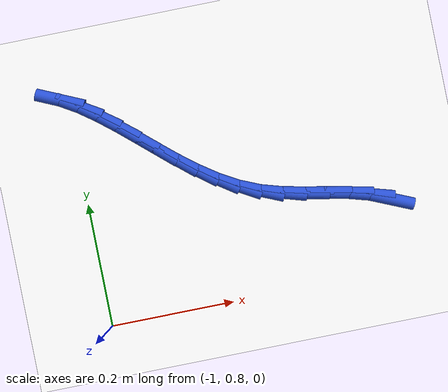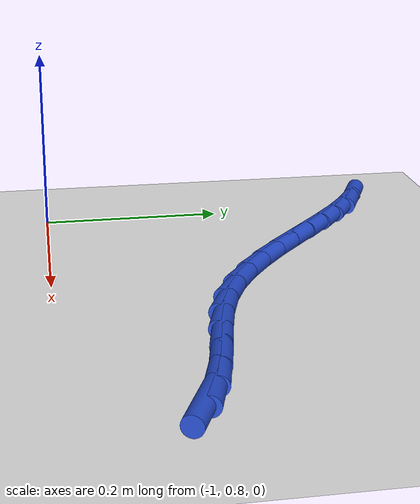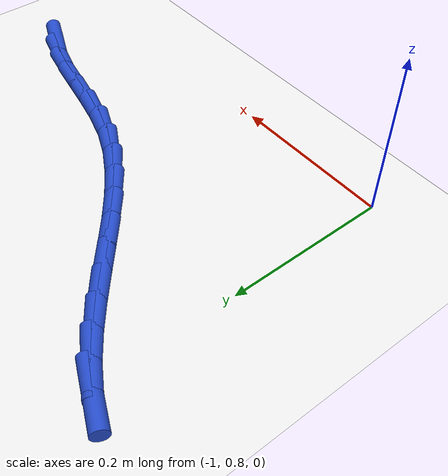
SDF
<sdf version="1.6">
 <world name="default">
  <model name="ground_plane">
   <static>1</static>
   <link name="link">
    <collision name="collision">
     <geometry><plane><normal>0 0 1</normal><size>100 100</size></plane></geometry>
     <surface><friction><ode><mu>100</mu><mu2>50</mu2></ode></friction></surface>
    </collision>
    <visual name="visual">
     <cast_shadows>0</cast_shadows>
     <geometry><plane><normal>0 0 1</normal><size>100 100</size></plane></geometry>
     <material>
      <script><uri>file://media/materials/scripts/gazebo.material</uri><name>Gazebo/WhiteGlow</name></script>
     </material>
    </visual>
   </link>
  </model>
  <model name="line">
   <link name="link_31">
    <pose>-0.5210448268210953 0.9144867935197305 0.01 0 1.57 -0.4097288504628345</pose>
    <collision name="collision">
     <geometry><cylinder><radius>0.01</radius><length>0.08</length></cylinder></geometry>
    </collision>
    <visual name="visual">
     <material>
      <script><name>Gazebo/Blue</name><uri>file://media/materials/scripts/gazebo.material</uri></script>
     </material>
     <geometry><cylinder><radius>0.01</radius><length>0.08</length></cylinder></geometry>
    </visual>
   </link>
   <link name="link_32">
    <pose>-0.5510934116767741 0.9275371605055613 0.01 0 1.57 -0.2778928901029603</pose>
    <collision name="collision">
     <geometry><cylinder><radius>0.01</radius><length>0.08</length></cylinder></geometry>
    </collision>
    <visual name="visual">
     <material>
      <script><name>Gazebo/Blue</name><uri>file://media/materials/scripts/gazebo.material</uri></script>
     </material>
     <geometry><cylinder><radius>0.01</radius><length>0.08</length></cylinder></geometry>
    </visual>
   </link>
   <link name="link_33">
    <pose>-0.5837401966307707 0.9368504512641631 0.01 0 1.57 -0.20532419274965513</pose>
    <collision name="collision">
     <geometry><cylinder><radius>0.01</radius><length>0.08</length></cylinder></geometry>
    </collision>
    <visual name="visual">
     <material>
      <script><name>Gazebo/Blue</name><uri>file://media/materials/scripts/gazebo.material</uri></script>
     </material>
     <geometry><cylinder><radius>0.01</radius><length>0.08</length></cylinder></geometry>
    </visual>
   </link>
   <link name="link_34">
    <pose>-0.6181196604270734 0.9440102856607198 0.01 0 1.57 -0.18483417914882785</pose>
    <collision name="collision">
     <geometry><cylinder><radius>0.01</radius><length>0.08</length></cylinder></geometry>
    </collision>
    <visual name="visual">
     <material>
      <script><name>Gazebo/Blue</name><uri>file://media/materials/scripts/gazebo.material</uri></script>
     </material>
     <geometry><cylinder><radius>0.01</radius><length>0.08</length></cylinder></geometry>
    </visual>
   </link>
   <link name="link_35">
    <pose>-0.6533662817585869 0.9506002836443302 0.01 0 1.57 -0.21246498933983246</pose>
    <collision name="collision">
     <geometry><cylinder><radius>0.01</radius><length>0.08</length></cylinder></geometry>
    </collision>
    <visual name="visual">
     <material>
      <script><name>Gazebo/Blue</name><uri>file://media/materials/scripts/gazebo.material</uri></script>
     </material>
     <geometry><cylinder><radius>0.01</radius><length>0.08</length></cylinder></geometry>
    </visual>
   </link>
   <link name="link_36">
    <pose>-0.6886145393182147 0.9582040651640937 0.01 0 1.57 -0.28840893188313016</pose>
    <collision name="collision">
     <geometry><cylinder><radius>0.01</radius><length>0.08</length></cylinder></geometry>
    </collision>
    <visual name="visual">
     <material>
      <script><name>Gazebo/Blue</name><uri>file://media/materials/scripts/gazebo.material</uri></script>
     </material>
     <geometry><cylinder><radius>0.01</radius><length>0.08</length></cylinder></geometry>
    </visual>
   </link>
   <link name="link_37">
    <pose>-0.7229989117988616 0.9684052501691085 0.01 0 1.57 -0.4070965581341074</pose>
    <collision name="collision">
     <geometry><cylinder><radius>0.01</radius><length>0.08</length></cylinder></geometry>
    </collision>
    <visual name="visual">
     <material>
      <script><name>Gazebo/Blue</name><uri>file://media/materials/scripts/gazebo.material</uri></script>
     </material>
     <geometry><cylinder><radius>0.01</radius><length>0.08</length></cylinder></geometry>
    </visual>
   </link>
   <link name="link_38">
    <pose>-0.7557713475280352 0.9825361880043053 0.01 0 1.57 -0.5196916320810838</pose>
    <collision name="collision">
     <geometry><cylinder><radius>0.01</radius><length>0.08</length></cylinder></geometry>
    </collision>
    <visual name="visual">
     <material>
      <script><name>Gazebo/Blue</name><uri>file://media/materials/scripts/gazebo.material</uri></script>
     </material>
     <geometry><cylinder><radius>0.01</radius><length>0.08</length></cylinder></geometry>
    </visual>
   </link>
   <link name="link_39">
    <pose>-0.7869187091929236 1.00035722708185 0.01 0 1.57 -0.6064296843038713</pose>
    <collision name="collision">
     <geometry><cylinder><radius>0.01</radius><length>0.08</length></cylinder></geometry>
    </collision>
    <visual name="visual">
     <material>
      <script><name>Gazebo/Blue</name><uri>file://media/materials/scripts/gazebo.material</uri></script>
     </material>
     <geometry><cylinder><radius>0.01</radius><length>0.08</length></cylinder></geometry>
    </visual>
   </link>
   <link name="link_40">
    <pose>-0.8167114884633406 1.0210220260419964 0.01 0 1.57 -0.6681969730887816</pose>
    <collision name="collision">
     <geometry><cylinder><radius>0.01</radius><length>0.08</length></cylinder></geometry>
    </collision>
    <visual name="visual">
     <material>
      <script><name>Gazebo/Blue</name><uri>file://media/materials/scripts/gazebo.material</uri></script>
     </material>
     <geometry><cylinder><radius>0.01</radius><length>0.08</length></cylinder></geometry>
    </visual>
   </link>
   <link name="link_41">
    <pose>-0.845420781855653 1.0436829497424895 0.01 0 1.57 -0.7065101633793706</pose>
    <collision name="collision">
     <geometry><cylinder><radius>0.01</radius><length>0.08</length></cylinder></geometry>
    </collision>
    <visual name="visual">
     <material>
      <script><name>Gazebo/Blue</name><uri>file://media/materials/scripts/gazebo.material</uri></script>
     </material>
     <geometry><cylinder><radius>0.01</radius><length>0.08</length></cylinder></geometry>
    </visual>
   </link>
   <link name="link_42">
    <pose>-0.8733176858862273 1.067492363041074 0.01 0 1.57 -0.7224233884377397</pose>
    <collision name="collision">
     <geometry><cylinder><radius>0.01</radius><length>0.08</length></cylinder></geometry>
    </collision>
    <visual name="visual">
     <material>
      <script><name>Gazebo/Blue</name><uri>file://media/materials/scripts/gazebo.material</uri></script>
     </material>
     <geometry><cylinder><radius>0.01</radius><length>0.08</length></cylinder></geometry>
    </visual>
   </link>
   <link name="link_43">
    <pose>-0.9006732970714307 1.0916026307954945 0.01 0 1.57 -0.7159738012784749</pose>
    <collision name="collision">
     <geometry><cylinder><radius>0.01</radius><length>0.08</length></cylinder></geometry>
    </collision>
    <visual name="visual">
     <material>
      <script><name>Gazebo/Blue</name><uri>file://media/materials/scripts/gazebo.material</uri></script>
     </material>
     <geometry><cylinder><radius>0.01</radius><length>0.08</length></cylinder></geometry>
    </visual>
   </link>
   <link name="link_44">
    <pose>-0.9277587119276302 1.115166117863495 0.01 0 1.57 -0.685896250720218</pose>
    <collision name="collision">
     <geometry><cylinder><radius>0.01</radius><length>0.08</length></cylinder></geometry>
    </collision>
    <visual name="visual">
     <material>
      <script><name>Gazebo/Blue</name><uri>file://media/materials/scripts/gazebo.material</uri></script>
     </material>
     <geometry><cylinder><radius>0.01</radius><length>0.08</length></cylinder></geometry>
    </visual>
   </link>
   <link name="link_45">
    <pose>-0.9548450269711918 1.1373351891028205 0.01 0 1.57 -0.6295147038442278</pose>
    <collision name="collision">
     <geometry><cylinder><radius>0.01</radius><length>0.08</length></cylinder></geometry>
    </collision>
    <visual name="visual">
     <material>
      <script><name>Gazebo/Blue</name><uri>file://media/materials/scripts/gazebo.material</uri></script>
     </material>
     <geometry><cylinder><radius>0.01</radius><length>0.08</length></cylinder></geometry>
    </visual>
   </link>
   <link name="link_46">
    <pose>-0.982203338718483 1.1572622093712155 0.01 0 1.57 -0.5429584819927106</pose>
    <collision name="collision">
     <geometry><cylinder><radius>0.01</radius><length>0.08</length></cylinder></geometry>
    </collision>
    <visual name="visual">
     <material>
      <script><name>Gazebo/Blue</name><uri>file://media/materials/scripts/gazebo.material</uri></script>
     </material>
     <geometry><cylinder><radius>0.01</radius><length>0.08</length></cylinder></geometry>
    </visual>
   </link>
   <link name="link_47">
    <pose>-1.0101047436858706 1.1740995435264248 0.01 0 1.57 -0.42221648896035374</pose>
    <collision name="collision">
     <geometry><cylinder><radius>0.01</radius><length>0.08</length></cylinder></geometry>
    </collision>
    <visual name="visual">
     <material>
      <script><name>Gazebo/Blue</name><uri>file://media/materials/scripts/gazebo.material</uri></script>
     </material>
     <geometry><cylinder><radius>0.01</radius><length>0.08</length></cylinder></geometry>
    </visual>
   </link>
  </model>
 </world>
</sdf>
